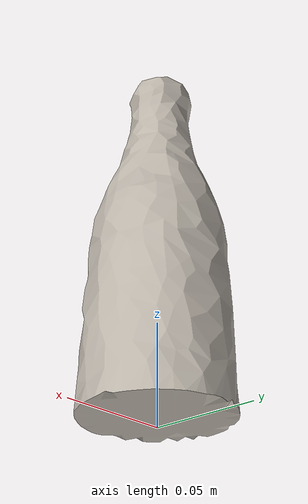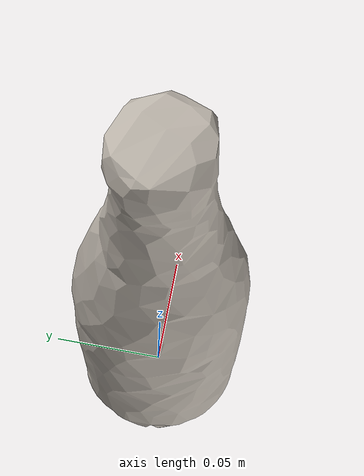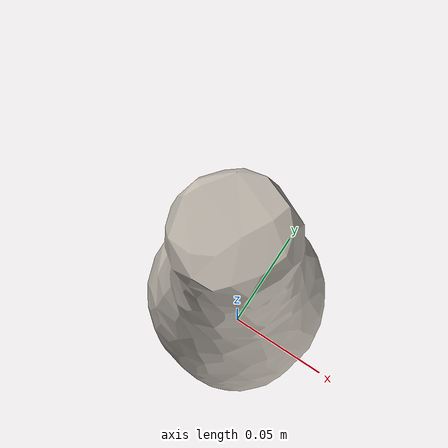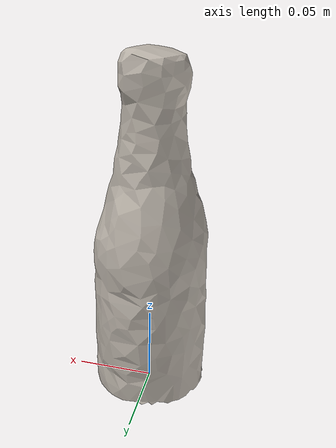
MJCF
<mujoco model="fuze_bottle">
  <compiler angle="radian"/>

  <asset>
    <texture name="fuze_bottle_tex" type="2d" file="fuze_bottle_visual_0.png"/>
    <material name="fuze_bottle_mat" texture="fuze_bottle_tex"/>
    <mesh name="fuze_bottle_visual" file="fuze_bottle_visual.obj" scale="1 1 1"/>
  </asset>

  <worldbody>
    <body name="fuze_bottle" pos="0 0 0.1075">
      <freejoint name="fuze_bottle_joint"/>

      <!-- Collision geometry - cylinder approximation -->
      <geom name="fuze_bottle_collision"
            type="cylinder"
            size="0.037 0.1075"
            mass="0.4"
            friction="0.8 0.005 0.0001"
            contype="1"
            conaffinity="1"
            rgba="0 0 0 0"/>

      <!-- Visual mesh -->
      <geom name="fuze_bottle_visual"
            type="mesh"
            mesh="fuze_bottle_visual"
            material="fuze_bottle_mat"
            contype="0"
            conaffinity="0"
            pos="0 0 -0.1075"/>
    </body>
  </worldbody>
</mujoco>
